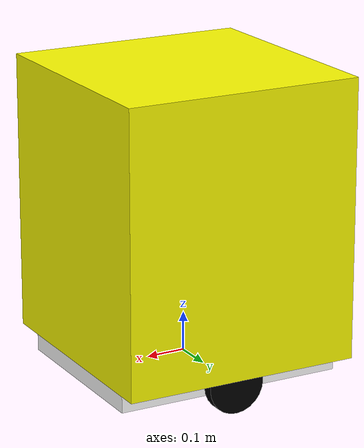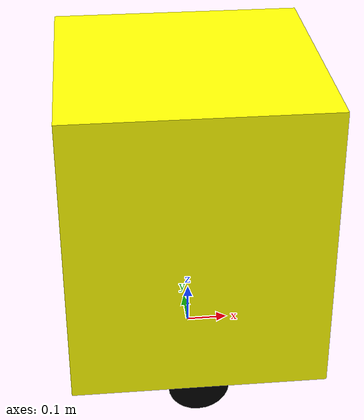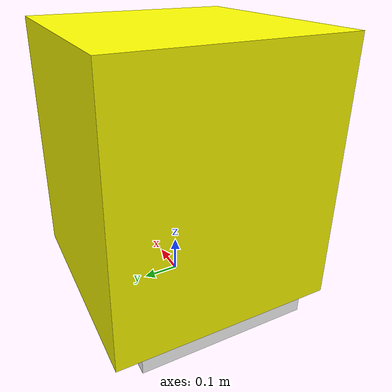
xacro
<?xml version="1.0"?>
<robot xmlns:xacro="http://www.ros.org/wiki/xacro" >

    <xacro:include filename="inertial_macros.xacro"/>

    <xacro:property name="chassis_length" value="0.60"/>
    <xacro:property name="chassis_width" value="0.60"/>
    <xacro:property name="chassis_height" value="0.70"/>
    <xacro:property name="chassis_mass" value="10.0"/>
    <xacro:property name="chassis1_length" value="0.58"/>
    <xacro:property name="chassis1_width" value="0.465"/>
    <xacro:property name="chassis1_height" value="0.05"/>
    <xacro:property name="wheel_radius" value="0.072"/>
    <xacro:property name="wheel_thickness" value="0.029"/>
    <xacro:property name="wheel_mass" value="0.235"/>
    <xacro:property name="wheel_offset_x" value="0.2"/>
    <xacro:property name="wheel_offset_y" value="0"/>
    <xacro:property name="wheel_offset_z" value="0.01"/>
    <xacro:property name="caster_wheel_radius" value="0.025"/>
    <xacro:property name="caster_wheel_mass" value="0.14"/>
    <xacro:property name="caster_wheel_offset_x" value="0.2"/>
    <xacro:property name="caster_wheel_offset_z" value="${wheel_offset_z - wheel_radius + caster_wheel_radius}"/>

    <material name="yellow">
        <color rgba="1 1 0 1" />
    </material>

    <material name="white">
        <color rgba="1 1 1 1"/>
    </material>

    <material name="black">
        <color rgba="0 0 0 1"/>
    </material>

xacro:inertial_box mass="0.5"
    <!-- BASE LINK -->

    <link name="base_link">

    </link>

    <!-- BASE_FOOTPRINT LINK -->

    <joint name="base_link_joint" type="fixed">
        <parent link="base_link"/>
        <child link="base_footprint"/>
        <origin xyz="0 0 0" rpy="0 0 0"/>
    </joint>

    <link name="base_footprint">
    </link>

    <!-- CHASSIS LINK -->

    <joint name="chassis_joint" type="fixed">
        <parent link="chassis1"/>
        <child link="chassis"/>
        <origin xyz="0 0 0.025"/>
    </joint>

    <link name="chassis">
        <visual>
            <origin xyz="0 0 ${chassis_height/2}"/>
            <geometry>
                <box size="${chassis_length} ${chassis_width} ${chassis_height}"/>
            </geometry>
            <material name="yellow"/>
        </visual>
        <collision>
            <origin xyz="0 0 ${chassis_height/2}"/>
            <geometry>
                <box size="${chassis_length} ${chassis_width} ${chassis_height}"/>
            </geometry>
        </collision>
        <xacro:inertial_box mass="0.5" x="${chassis_length}" y="${chassis_width}" z="${chassis_height}">
            <origin xyz="0 0 ${chassis_height/2}" rpy="0 0 0"/>
        </xacro:inertial_box>
    </link>

    <gazebo reference="chassis">
        <material>Gazebo/White</material>
    </gazebo>

    <!-- CHASSIS1 LINK -->

    <joint name="chassis_joint1" type="fixed">
        <parent link="base_link"/>
        <child link="chassis1"/>
        <origin xyz="0 0 0"/>
    </joint>

    <link name="chassis1">
        <visual>
            <origin xyz="0 0 0"/>
            <geometry>
                <box size="${chassis1_length} ${chassis1_width} ${chassis1_height}"/>
            </geometry>
            <material name="white"/>
        </visual>
        <collision>
            <origin xyz="0 0 0"/>
            <geometry>
                <box size="${chassis1_length} ${chassis1_width} ${chassis1_height}"/>
            </geometry>
        </collision>
        <xacro:inertial_box mass="0.5" x="${chassis1_length}" y="${chassis1_width}" z="${chassis1_height}">
            <origin xyz="0 0 0" rpy="0 0 0"/>
        </xacro:inertial_box>
    </link>

    <gazebo reference="chassis1">
        <material>Gazebo/White</material>
    </gazebo>

    <!-- LEFT WHEEL LINK -->

    <joint name="left_wheel_joint" type="continuous">
        <parent link="chassis1"/>
        <child link="left_wheel"/>
        <origin xyz="0 0.25 0" rpy="-${pi/2} 0 0" />
        <axis xyz="0 0 1"/>
    </joint>

    <link name="left_wheel">
        <visual>
            <geometry>
                <cylinder radius="${wheel_radius}" length="${wheel_thickness}"/>
            </geometry>
            <material name="black"/>
        </visual>
        <collision>
            <geometry>
                <sphere radius="${wheel_radius}"/>
            </geometry>
        </collision>
        <xacro:inertial_cylinder mass="${wheel_mass}" length="${wheel_thickness}" radius="${wheel_radius}">
            <origin xyz="0 0.25 0" rpy="0 0 0"/>
        </xacro:inertial_cylinder>
    </link>

    <gazebo reference="left_wheel">
        <material>Gazebo/Black</material>
    </gazebo>

    <!-- RIGHT WHEEL LINK -->

    <joint name="right_wheel_joint" type="continuous">
        <parent link="chassis1"/>
        <child link="right_wheel"/>
        <origin xyz="0 -0.25 0" rpy="${pi/2} 0 0" />
        <axis xyz="0 0 -1"/>
    </joint>

    <link name="right_wheel">
        <visual>
            <geometry>
                <cylinder radius="${wheel_radius}" length="${wheel_thickness}"/>
            </geometry>
            <material name="black"/>
        </visual>
        <collision>
            <geometry>
                <sphere radius="${wheel_radius}"/>
            </geometry>
        </collision>
        <xacro:inertial_cylinder mass="${wheel_mass}" length="${wheel_thickness}" radius="${wheel_radius}">
            <origin xyz="0 -0.25 0" rpy="0 0 0"/>
        </xacro:inertial_cylinder>
    </link>

    <gazebo reference="right_wheel">
        <material>Gazebo/Black</material>
    </gazebo>

    <!-- CASTER WHEEL LINK -->

    <joint name="caster_wheel_joint" type="fixed">
        <parent link="chassis1"/>
        <child link="caster_wheel"/>
        <origin xyz="${caster_wheel_offset_x/2-0.3} ${caster_wheel_offset_x} 0"/>
    </joint>

    <link name="caster_wheel">
        <visual>
            <geometry>
                <sphere radius="${caster_wheel_radius}"/>
            </geometry>
            <material name="black"/>
        </visual>
        <collision>
            <geometry>
                <sphere radius="${caster_wheel_radius}"/>
            </geometry>
        </collision>
        <xacro:inertial_sphere mass="${caster_wheel_mass}" radius="${caster_wheel_radius}">
            <origin xyz="0 0 0" rpy="0 0 0"/>
        </xacro:inertial_sphere>
    </link>

    <gazebo reference="caster_wheel">
        <material>Gazebo/White</material>
        <mu1 value="0.001"/>
        <mu2 value="0.001"/>
    </gazebo>

    <joint name="caster_wheel_joint1" type="fixed">
        <parent link="chassis1"/>
        <child link="caster_wheel1"/>
        <origin xyz="${chassis_length-caster_wheel_offset_x/2-0.3} ${caster_wheel_offset_x} 0"/>
    </joint>

    <link name="caster_wheel1">
        <visual>
            <geometry>
                <sphere radius="${caster_wheel_radius}"/>
            </geometry>
            <material name="black"/>
        </visual>
        <collision>
            <geometry>
                <sphere radius="${caster_wheel_radius}"/>
            </geometry>
        </collision>
        <xacro:inertial_sphere mass="${caster_wheel_mass}" radius="${caster_wheel_radius}">
            <origin xyz="0 0 0" rpy="0 0 0"/>
        </xacro:inertial_sphere>
    </link>

    <gazebo reference="caster_wheel1">
        <material>Gazebo/White</material>
        <mu1 value="0.001"/>
        <mu2 value="0.001"/>
    </gazebo>

    <joint name="caster_wheel_joint2" type="fixed">
        <parent link="chassis1"/>
        <child link="caster_wheel2"/>
        <origin xyz="${chassis_length-caster_wheel_offset_x/2-0.3} -${caster_wheel_offset_x} 0"/>
    </joint>

    <link name="caster_wheel2">
        <visual>
            <geometry>
                <sphere radius="${caster_wheel_radius}"/>
            </geometry>
            <material name="black"/>
        </visual>
        <collision>
            <geometry>
                <sphere radius="${caster_wheel_radius}"/>
            </geometry>
        </collision>
        <xacro:inertial_sphere mass="${caster_wheel_mass}" radius="${caster_wheel_radius}">
            <origin xyz="0 0 0" rpy="0 0 0"/>
        </xacro:inertial_sphere>
    </link>

    <gazebo reference="caster_wheel2">
        <material>Gazebo/White</material>
        <mu1 value="0.001"/>
        <mu2 value="0.001"/>
    </gazebo>

    <joint name="caster_wheel_joint3" type="fixed">
        <parent link="chassis1"/>
        <child link="caster_wheel3"/>
        <origin xyz="${caster_wheel_offset_x/2-0.3} -${caster_wheel_offset_x} 0"/>
    </joint>

    <link name="caster_wheel3">
        <visual>
            <geometry>
                <sphere radius="${caster_wheel_radius}"/>
            </geometry>
            <material name="black"/>
        </visual>
        <collision>
            <geometry>
                <sphere radius="${caster_wheel_radius}"/>
            </geometry>
        </collision>
        <xacro:inertial_sphere mass="${caster_wheel_mass}" radius="${caster_wheel_radius}">
            <origin xyz="0 0 0" rpy="0 0 0"/>
        </xacro:inertial_sphere>
    </link>

    <gazebo reference="caster_wheel3">
        <material>Gazebo/White</material>
        <mu1 value="0.001"/>
        <mu2 value="0.001"/>
    </gazebo>

</robot>
